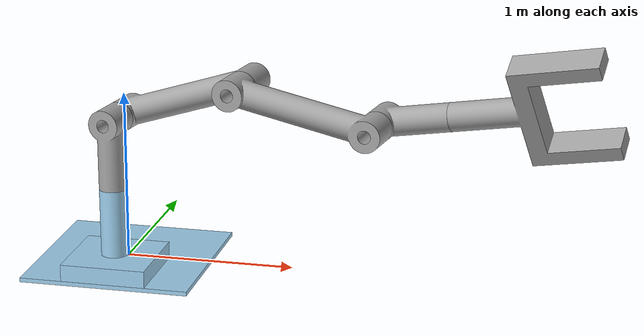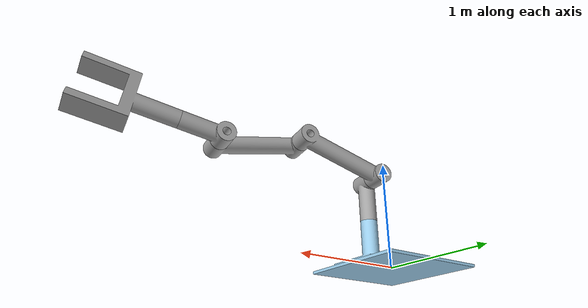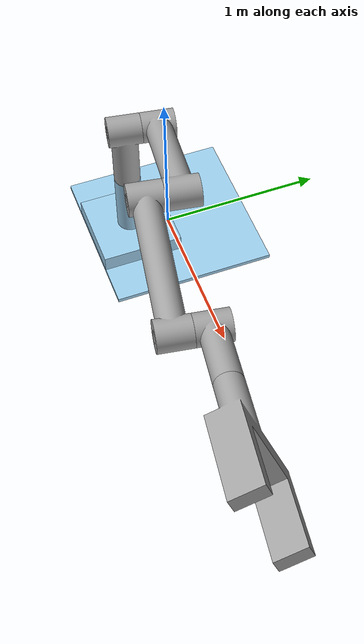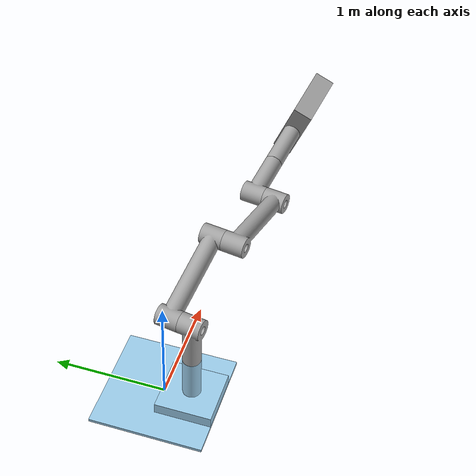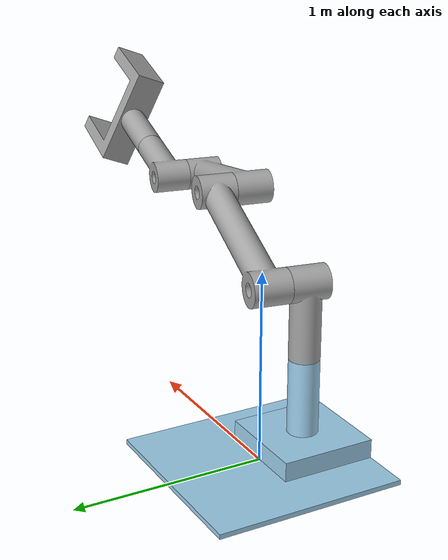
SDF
<?xml version="1.0"?>
<sdf version="1.6">
  <model name="coffee_robot">

    <!-- link section -->

    <link name="slider_base">
      <frame name="slider_base_frame">
        <pose>0 0 0 0 -0 0</pose>
      </frame>
      <visual name="slider_base_0_slider_base_visual">
        <pose>0 0 -0.025 0 -0 1.570796326794896558</pose>
        <geometry>
          <mesh>
            <uri>file://stl_files//slider_base.stl</uri>
          </mesh>
        </geometry>
        <material>
          <ambient>
            0.61568627450980395466 0.81176470588235294379 0.92941176470588238168 1
          </ambient>
          <diffuse>
            0.61568627450980395466 0.81176470588235294379 0.92941176470588238168 1
          </diffuse>
          <specular>0.1 0.1 0.1 1</specular>
          <emissive>0 0 0 0</emissive>
        </material>
      </visual>
      <collision name="slider_base_0_slider_base_visual">
        <pose>0 0 -0.025 0 -0 1.570796326794896558</pose>
        <geometry>
          <mesh>
            <uri>file://stl_files//slider_base.stl</uri>
          </mesh>
        </geometry>
      </collision>
      <inertial>
        <pose frame="slider_base_frame">-0 0 -0.0125 0 0 0</pose>
        <mass>196.25</mass>
        <inertia>
          <ixx>16.364388020833334991</ixx>
          <ixy>0</ixy>
          <ixz>0</ixz>
          <iyy>16.364388020833331439</iyy>
          <iyz>0</iyz>
          <izz>32.708333333333342807</izz>
        </inertia>
      </inertial>
    </link>
    <link name="base">
      <frame name="base_frame">
        <pose>0 0 0 0 -0 0</pose>
      </frame>
      <visual name="base_0_base_visual">
        <pose>0 -0.25 0 0 0 3.1415926535897926719</pose>
        <geometry>
          <mesh>
            <uri>file://stl_files//base.stl</uri>
          </mesh>
        </geometry>
        <material>
          <ambient>
            0.61568627450980395466 0.81176470588235294379 0.92941176470588238168 1
          </ambient>
          <diffuse>
           0.61568627450980395466 0.81176470588235294379 0.92941176470588238168 1
          </diffuse>
          <specular>0.1 0.1 0.1 1</specular>
          <emissive>0 0 0 0</emissive>
        </material>
      </visual>
      <collision name="base_0_base_visual">
        <pose>0 -0.25 0 0 0 3.1415926535897926719</pose>
        <geometry>
          <mesh>
            <uri>file://stl_files//base.stl</uri>
          </mesh>
        </geometry>
      </collision>
      <inertial>
        <pose frame="base_frame">0 -0.25 0.10839875602683685107 0 0 0</pose>
        <mass>88.618276691282687807</mass>
        <inertia>
          <ixx>2.7336548355441787628</ixx>
          <ixy>0</ixy>
          <ixz>0</ixz>
          <iyy>2.7336548355441787628</iyy>
          <iyz>0</iyz>
          <izz>2.8815676509512706538</izz>
        </inertia>
      </inertial>
    </link>

    <link name="joint_connector">
      <frame name="joint_connector_frame">
        <pose>0 0 0 0 -0 0</pose>
      </frame>
      <visual name="joint_connector_0_joint_connector_visual">
        <pose>0 -0.25 0.5 0 0 2.9803991001943637151</pose>
        <geometry>
          <mesh>
            <uri>file://stl_files//joint_connector.stl</uri>
          </mesh>
        </geometry>
        <material>
          <ambient>
           0.64705882352941179736 0.64705882352941179736 0.64705882352941179736 1
          </ambient>
          <diffuse>
           0.64705882352941179736 0.64705882352941179736 0.64705882352941179736 1
          </diffuse>
          <specular>0.1 0.1 0.1 1</specular>
          <emissive>0 0 0 0</emissive>
        </material>
      </visual>
      <collision name="joint_connector_0_joint_connector_visual">
        <pose>0 -0.25 0.5 0 0 2.9803991001943637151</pose>
        <geometry>
          <mesh>
            <uri>file://stl_files//joint_connector.stl</uri>
          </mesh>
        </geometry>
      </collision>
      <inertial>
        <pose frame="joint_connector_frame">
         0 -0.24999999324013080781 0.75987241605285216206 0 0 0
        </pose>
        <mass>28.13759709424636668</mass>
        <inertia>
          <ixx>0.6037818416054283599</ixx>
          <ixy>-0.0015214464136306547672</ixy>
          <ixz>0</ixz>
          <iyy>0.59467260133416888213</iyy>
          <iyz>0</iyz>
          <izz>0.12066133254675763531</izz>
        </inertia>
      </inertial>
    </link>

    <link name="joint">
      <frame name="joint_frame">
        <pose>0 0 0 0 -0 0</pose>
      </frame>
      <visual name="joint_0_joint_visual">
        <pose>
          0.04567146112819880921
          -0.054799610350664662572
          0.90466459226476392264
          0
          1.2437461080070706387
          -0.16119355339538343763
        </pose>
        <geometry>
          <mesh>
            <uri>file://stl_files//joint.stl</uri>
          </mesh>
        </geometry>
        <material>
          <ambient>
           0.64705882352941179736 0.64705882352941179736 0.64705882352941179736 1
          </ambient>
          <diffuse>
           0.64705882352941179736 0.64705882352941179736 0.64705882352941179736 1
          </diffuse>
          <specular>0.1 0.1 0.1 1</specular>
          <emissive>0 0 0 0</emissive>
        </material>
      </visual>
      <collision name="joint_0_joint_visual">
        <pose>
          0.04567146112819880921
          -0.054799610350664662572
          0.90466459226476392264
          0
          1.2437461080070706387
          -0.16119355339538343763
        </pose>
        <geometry>
          <mesh>
            <uri>file://stl_files//joint.stl</uri>
          </mesh>
        </geometry>
      </collision>
      <inertial>
        <pose frame="joint_frame">
          0.41277210999075675257
          -0.11449157204272453203
          1.0308333350987732846
          0
          0
          0
        </pose>
        <mass>58.257899734588079355</mass>
        <inertia>
          <ixx>0.8734840725610080181</ixx>
          <ixy>0.70479328911462857388</ixy>
          <ixz>-1.4961171219162439083</ixz>
          <iyy>5.0932803819757159758</iyy>
          <iyz>0.24327649158643577243</iyz>
          <izz>4.7129026313383048929</izz>
        </inertia>
      </inertial>
    </link>

    <link name="joint_2">
      <frame name="joint_2_frame">
        <pose>0 0 0 0 -0 0</pose>
      </frame>
      <visual name="joint_2_0_joint_visual">
        <pose>
          0.77545875016405296787
          -0.37609295419393673487
          1.1591344058789494476
          -3.141592653589793116
          -1.3955917527194452443
          -0.1611935533953745836
        </pose>
        <geometry>
          <mesh>
            <uri>file://stl_files//joint.stl</uri>
          </mesh>
        </geometry>
        <material>
          <ambient>
            0.64705882352941179736 0.64705882352941179736 0.64705882352941179736 1
          </ambient>
          <diffuse>
            0.64705882352941179736 0.64705882352941179736 0.64705882352941179736 1
          </diffuse>
          <specular>0.1 0.1 0.1 1</specular>
          <emissive>0 0 0 0</emissive>
        </material>
      </visual>
      <collision name="joint_2_0_joint_visual">
        <pose>
          0.77545875016405296787
          -0.37609295419393673487
          1.1591344058789494476
          -3.141592653589793116
          -1.3955917527194452443
          -0.1611935533953745836
        </pose>
        <geometry>
          <mesh>
            <uri>file://stl_files//joint.stl</uri>
          </mesh>
        </geometry>
      </collision>
      <inertial>
        <pose frame="joint_2_frame">
          1.1571725567292305836
          -0.43816146887541951305
          1.0906753837049112388
          0
          0
          0
        </pose>
        <mass>58.257899734588079355</mass>
        <inertia>
          <ixx>0.52001668960702662758</ixx>
          <ixy>0.76226596702263593741</ixy>
          <ixz>0.84410378340903380323</ixz>
          <iyy>5.0839355064419136099</iyy>
          <iyz>-0.13725377617276693365</iyz>
          <izz>5.0757148898257913316</izz>
        </inertia>
      </inertial>
    </link>

    <link name="joint_connector_2">
      <frame name="joint_connector_2_frame">
        <pose>0 0 0 0 -0 0</pose>
      </frame>
      <visual name="joint_connector_2_0_joint_connector_visual">
      <pose>
         1.9729229426510801471
         -0.36817905539329665032
         1.0946235190922799507
         -3.1415926535897908956
         1.3823408418668621245
        -0.16119355339537724814
        </pose>
        <geometry>
          <mesh>
            <uri>file://stl_files//joint_connector.stl</uri>
          </mesh>
        </geometry>
        <material>
          <ambient>
            0.64705882352941179736 0.64705882352941179736 0.64705882352941179736 1
          </ambient>
          <diffuse>
            0.64705882352941179736 0.64705882352941179736 0.64705882352941179736 1
          </diffuse>
          <specular>0.1 0.1 0.1 1</specular>
          <emissive>0 0 0 0</emissive>
        </material>
      </visual>
      <collision name="joint_connector_2_0_joint_connector_visual">
        <pose>
          1.9729229426510801471
          -0.36817905539329665032
          1.0946235190922799507
          -3.1415926535897908956
          1.3823408418668621245
          -0.16119355339537724814
        </pose>
        <geometry>
          <mesh>
            <uri>file://stl_files//joint_connector.stl</uri>
          </mesh>
        </geometry>
      </collision>
      <inertial>
        <pose frame="joint_connector_2_frame">
          1.7209608576703165905
          -0.32720891871212043345
          1.0459385290273808256
          0
          0
          0
        </pose>
        <mass>28.13759709424636668</mass>
        <inertia>
          <ixx>0.14939283175590498121</ixx>
          <ixy>0.072364217427873675503</ixy>
          <ixz>-0.087798638804753373344</ixz>
          <iyy>0.5826584654220642312</iyy>
          <iyz>0.014276426740556654241</iyz>
          <izz>0.5870644783083709406</izz>
        </inertia>
      </inertial>
    </link>

    <link name="joint_end">
      <frame name="joint_end_frame">
        <pose>0 0 0 0 -0 0</pose>
      </frame>
      <visual name="joint_end_0_joint_end_visual">
        <pose>
          1.9729229426510801471
          -0.36817905539329665032
          1.0946235190922799507
          -1.3679986560417052299
          0.37597494694958172312
          -1.656631805932467838
        </pose>
        <geometry>
          <mesh>
            <uri>file://stl_files//joint_end.stl</uri>
          </mesh>
        </geometry>
        <material>
          <ambient>
            0.64705882352941179736 0.64705882352941179736 0.64705882352941179736 1
          </ambient>
          <diffuse>
            0.64705882352941179736 0.64705882352941179736 0.64705882352941179736 1
          </diffuse>
          <specular>0.1 0.1 0.1 1</specular>
          <emissive>0 0 0 0</emissive>
        </material>
      </visual>
      <collision name="joint_end_0_joint_end_visual">
        <pose>
          1.9729229426510801471
          -0.36817905539329665032
          1.0946235190922799507
          -1.3679986560417052299
          0.37597494694958172312
          -1.656631805932467838
        </pose>
        <geometry>
          <mesh>
            <uri>file://stl_files//joint_end.stl</uri>
          </mesh>
        </geometry>
      </collision>
      <inertial>
        <pose frame="joint_end_frame">
          2.4402103402534751631
          -0.44416201181595493797
          1.184914443181307675
          0
          0
          0
        </pose>
        <mass>81.382276691282697811</mass>
        <inertia>
          <ixx>3.2923762242544079015</ixx>
          <ixy>0.3330736252323918678</ixy>
          <ixz>-0.064264210241039440574</ixz>
          <iyy>6.4474428902671121477</iyy>
          <iyz>0.9873514001201284529</iyz>
          <izz>4.3892802004261062265</izz>
        </inertia>
      </inertial>
    </link>

    <!-- joint section -->

    <joint name="theta6" type="revolute">
      <pose>1.9729229426510801471 -0.36817905539329665032 1.0946235190922799507 1.7735939975480881081 0.37597494694958172312 -1.656631805932467838</pose>
      <parent>joint_connector_2</parent>
      <child>joint_end</child>
      <axis>
	<xyz>0 0 1</xyz>
	<limit><effort>1</effort><velocity>20</velocity></limit>
      </axis>
    </joint>

    <joint name="theta5" type="revolute">
      <pose>1.569049019409952006 -0.40382078838462676096 1.0196867391027901739 1.5707963267948987784 1.3823408418668621245 -0.16119355339537724814</pose>
      <parent>joint_2</parent>
      <child>joint_connector_2</child>
      <axis>
	<xyz>0 0 1</xyz>
	<limit><effort>1</effort><velocity>20</velocity><lower>-1.570796326794896558</lower><upper>1.570796326794896558</upper></limit>
      </axis>
    </joint>

    <joint name="theta4" type="revolute">
      <pose>0.77739594414632207098 -0.2750945667312020837 1.1616653960478848795 -1.570796326794896336 -1.3955917527194452443 -0.1611935533953745836</pose>
      <parent>joint</parent>
      <child>joint_2</child>
      <axis>
	<xyz>0 0 1</xyz>
	<limit><effort>1</effort><velocity>20</velocity><lower>-1.570796326794896558</lower><upper>1.570796326794896558</upper></limit>
      </axis>
    </joint>

    <joint name="theta3" type="revolute">
      <pose>0.016049640133063518971 -0.15129635745526351376 0.89999999999999913403 1.5707963267948952257 1.2437461080070706387 -0.16119355339538343763</pose>
      <parent>joint_connector</parent>
      <child>joint</child>
      <axis>
	<xyz>0 0 1</xyz>
	<limit><effort>1</effort><velocity>20</velocity><lower>-3.141592653589793116</lower><upper>0</upper></limit>
      </axis>
    </joint>

    <joint name="theta2" type="revolute">
      <pose>2.2125839930837439784e-16 -0.25 0.5 3.141592653589793116 1.8361192345487250241e-14 2.9803991001943637151</pose>
      <parent>base</parent>
      <child>joint_connector</child>
      <axis>
	<xyz>0 0 1</xyz>
	<limit><effort>1</effort><velocity>20</velocity></limit>
      </axis>
    </joint>

    <joint name="d1" type="prismatic">
      <pose>8.3266726846886851465e-17 -0.50000000000000022204 6.331640932279349253e-30 1.570796326794896558 -2.5326563729117385801e-29 -1.5707963267948970021</pose>
      <parent>slider_base</parent>
      <child>base</child>
      <axis>
	<xyz>0 0 1</xyz>
	<limit><effort>1</effort><velocity>20</velocity><lower>-1</lower><upper>1</upper></limit>
      </axis>
    </joint>

    <joint name="d0" type="fixed">
      <pose> 0 0 0 0 0 0 </pose>
      <parent>world</parent>
      <child>slider_base</child>
    </joint>

    <!-- control section -->

    <!--   filename="libignition-gazebo-joint-position-controller-system.so" -->
    <!--   name="ignition::gazebo::systems::JointPositionController"> -->
    <!--   filename="libignition-gazebo-joint-state-publisher-system.so" -->
    <!--   name="ignition::gazebo::systems::JointStatePublisher"> -->

    <!--   filename="libignition-gazebo-joint-position-controller-system.so" -->
    <!--   name="ignition::gazebo::systems::JointPositionController"> -->
    <!--   filename="libignition-gazebo-joint-state-publisher-system.so" -->
    <!--   name="ignition::gazebo::systems::JointStatePublisher"> -->

    <!--   filename="libignition-gazebo-joint-position-controller-system.so" -->
    <!--   name="ignition::gazebo::systems::JointPositionController"> -->
    <!--   filename="libignition-gazebo-joint-state-publisher-system.so" -->
    <!--   name="ignition::gazebo::systems::JointStatePublisher"> -->

    <!--   filename="libignition-gazebo-joint-position-controller-system.so" -->
    <!--   name="ignition::gazebo::systems::JointPositionController"> -->
    <!--   filename="libignition-gazebo-joint-state-publisher-system.so" -->
    <!--   name="ignition::gazebo::systems::JointStatePublisher"> -->

    <!--   filename="libignition-gazebo-joint-position-controller-system.so" -->
    <!--   name="ignition::gazebo::systems::JointPositionController"> -->
    <!--   filename="libignition-gazebo-joint-state-publisher-system.so" -->
    <!--   name="ignition::gazebo::systems::JointStatePublisher"> -->

    <!--   filename="libignition-gazebo-joint-position-controller-system.so" -->
    <!--   name="ignition::gazebo::systems::JointPositionController"> -->
    <!--   filename="libignition-gazebo-joint-state-publisher-system.so" -->
    <!--   name="ignition::gazebo::systems::JointStatePublisher"> -->

    <plugin

filename="libignition-gazebo-joint-trajectory-controller-system.so"
name="ignition::gazebo::systems::JointTrajectoryController">
      <topic>traj_ctrl</topic>

      <joint_name>d1</joint_name>
      <position_p_gain>1.0</position_p_gain>
      <position_i_gain>0.0</position_i_gain>
      <position_d_gain>0.0</position_d_gain>

      <joint_name>theta2</joint_name>
      <position_p_gain>1.0</position_p_gain>
      <position_i_gain>0.0</position_i_gain>
      <position_d_gain>0.0</position_d_gain>

      <joint_name>theta3</joint_name>
      <position_p_gain>1.0</position_p_gain>
      <position_i_gain>0.0</position_i_gain>
      <position_d_gain>0.0</position_d_gain>

      <joint_name>theta4</joint_name>
      <position_p_gain>1.0</position_p_gain>
      <position_i_gain>0.0</position_i_gain>
      <position_d_gain>0.0</position_d_gain>

      <joint_name>theta5</joint_name>
      <position_p_gain>1.0</position_p_gain>
      <position_i_gain>0.0</position_i_gain>
      <position_d_gain>0.0</position_d_gain>

      <joint_name>theta6</joint_name>
      <position_p_gain>1.0</position_p_gain>
      <position_i_gain>0.0</position_i_gain>
      <position_d_gain>0.0</position_d_gain>

    </plugin>

  </model>
</sdf>
